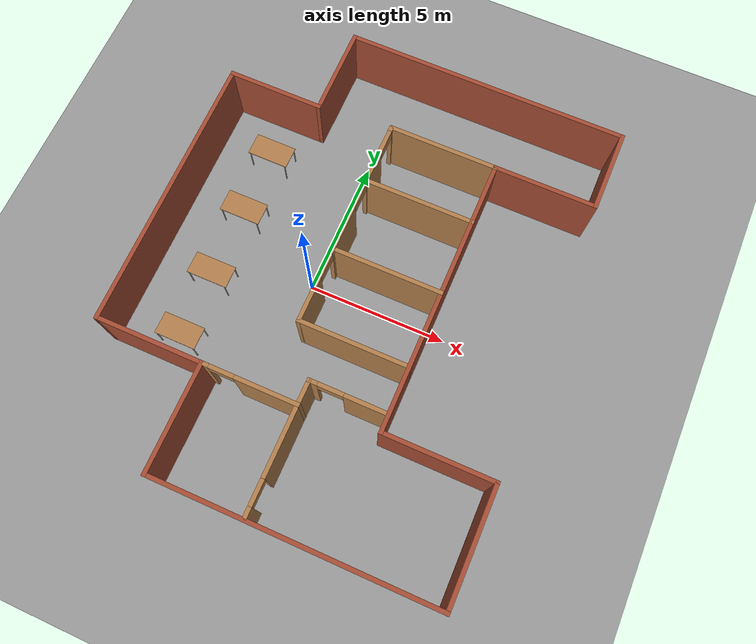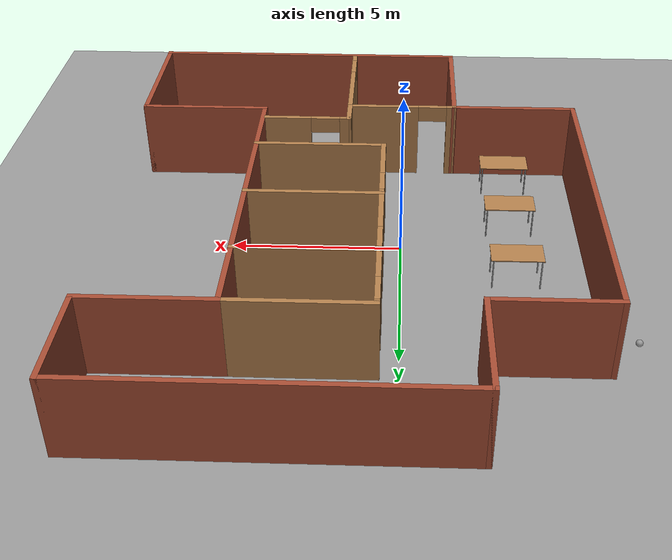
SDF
<sdf version="1.6">
 <world name="default">
  <plugin name="welcome_message" filename="libhello.so"/>
  <light name="sun" type="directional">
   <pose>0 0 10 0 -0 0</pose>
   <diffuse>0.8 0.8 0.8 1</diffuse>
   <specular>0.2 0.2 0.2 1</specular>
   <attenuation>
    <range>1000</range>
    <constant>0.9</constant>
    <linear>0.01</linear>
    <quadratic>0.001</quadratic>
   </attenuation>
   <direction>-0.5 0.1 -0.9</direction>
  </light>
  <model name="ground_plane">
   <static>1</static>
   <link name="link">
    <collision name="collision">
     <geometry><plane><normal>0 0 1</normal><size>100 100</size></plane></geometry>
     <surface>
      <contact><collide_bitmask>65535</collide_bitmask></contact>
      <friction><ode><mu>100</mu><mu2>50</mu2></ode></friction>
     </surface>
    </collision>
    <visual name="visual">
     <cast_shadows>0</cast_shadows>
     <geometry><plane><normal>0 0 1</normal><size>100 100</size></plane></geometry>
     <material>
      <script><uri>file://media/materials/scripts/gazebo.material</uri><name>Gazebo/Grey</name></script>
     </material>
    </visual>
   </link>
  </model>
  <gravity>0 0 -9.8</gravity>
  <magnetic_field>6e-06 2.3e-05 -4.2e-05</magnetic_field>
  <atmosphere type="adiabatic"/>
  <physics name="default_physics" default="0" type="ode">
   <max_step_size>0.001</max_step_size>
   <real_time_factor>1</real_time_factor>
   <real_time_update_rate>1000</real_time_update_rate>
  </physics>
  <scene><ambient>0.4 0.4 0.4 1</ambient><background>0.7 0.7 0.7 1</background><shadows>1</shadows></scene>
  <audio><device>default</device></audio>
  <spherical_coordinates>
   <surface_model>EARTH_WGS84</surface_model>
   <latitude_deg>0</latitude_deg>
   <longitude_deg>0</longitude_deg>
   <elevation>0</elevation>
   <heading_deg>0</heading_deg>
  </spherical_coordinates>
  <model name="model">
   <pose>1.41103 0.185901 0 0 -0 0</pose>
   <link name="Wall_15">
    <collision name="Wall_15_Collision">
     <geometry><box><size>10 0.15 2.5</size></box></geometry>
     <pose>0 0 1.25 0 -0 0</pose>
    </collision>
    <visual name="Wall_15_Visual">
     <pose>0 0 1.25 0 -0 0</pose>
     <geometry><box><size>10 0.15 2.5</size></box></geometry>
     <material>
      <script><uri>file://media/materials/scripts/gazebo.material</uri><name>Gazebo/Bricks</name></script>
      <ambient>1 1 1 1</ambient>
     </material>
     <meta><layer>0</layer></meta>
    </visual>
    <pose>-6.84447 0.347023 0 0 -0 -1.5708</pose>
   </link>
   <link name="Wall_16">
    <collision name="Wall_16_Collision">
     <geometry><box><size>3.93 0.15 2.5</size></box></geometry>
     <pose>0 0 1.25 0 -0 0</pose>
    </collision>
    <visual name="Wall_16_Visual">
     <pose>0 0 1.25 0 -0 0</pose>
     <geometry><box><size>3.93 0.15 2.5</size></box></geometry>
     <material>
      <script><uri>file://media/materials/scripts/gazebo.material</uri><name>Gazebo/Bricks</name></script>
      <ambient>1 1 1 1</ambient>
     </material>
     <meta><layer>0</layer></meta>
    </visual>
    <pose>-4.95447 -4.57648 0 0 -0 0.000794</pose>
   </link>
   <link name="Wall_17">
    <collision name="Wall_17_Collision">
     <geometry><box><size>3.94664 0.15 2.5</size></box></geometry>
     <pose>0 0 1.25 0 -0 0</pose>
    </collision>
    <visual name="Wall_17_Visual">
     <pose>0 0 1.25 0 -0 0</pose>
     <geometry><box><size>3.94664 0.15 2.5</size></box></geometry>
     <material>
      <script><uri>file://media/materials/scripts/gazebo.material</uri><name>Gazebo/Bricks</name></script>
      <ambient>1 1 1 1</ambient>
     </material>
     <meta><layer>0</layer></meta>
    </visual>
    <pose>-3.07047 -6.47348 0 0 -0 -1.57396</pose>
   </link>
   <link name="Wall_18">
    <collision name="Wall_18_Collision">
     <geometry><box><size>10.0703 0.15 2.5</size></box></geometry>
     <pose>0 0 1.25 0 -0 0</pose>
    </collision>
    <visual name="Wall_18_Visual">
     <pose>0 0 1.25 0 -0 0</pose>
     <geometry><box><size>10.0703 0.15 2.5</size></box></geometry>
     <material>
      <script><uri>file://media/materials/scripts/gazebo.material</uri><name>Gazebo/Bricks</name></script>
      <ambient>1 1 1 1</ambient>
     </material>
     <meta><layer>0</layer></meta>
    </visual>
    <pose>1.88403 -8.37198 0 0 -0 0</pose>
   </link>
   <link name="Wall_21">
    <collision name="Wall_21_Collision">
     <geometry><box><size>3.5 0.15 2.5</size></box></geometry>
     <pose>0 0 1.25 0 -0 0</pose>
    </collision>
    <visual name="Wall_21_Visual">
     <pose>0 0 1.25 0 -0 0</pose>
     <geometry><box><size>3.5 0.15 2.5</size></box></geometry>
     <material>
      <script><uri>file://media/materials/scripts/gazebo.material</uri><name>Gazebo/Bricks</name></script>
      <ambient>1 1 1 1</ambient>
     </material>
     <meta><layer>0</layer></meta>
    </visual>
    <pose>-5.16947 5.27202 0 0 -0 0</pose>
   </link>
   <link name="Wall_24">
    <collision name="Wall_24_Collision">
     <geometry><box><size>3.25 0.15 2.5</size></box></geometry>
     <pose>0 0 1.25 0 -0 0</pose>
    </collision>
    <visual name="Wall_24_Visual">
     <pose>0 0 1.25 0 -0 0</pose>
     <geometry><box><size>3.25 0.15 2.5</size></box></geometry>
     <material>
      <script><uri>file://media/materials/scripts/gazebo.material</uri><name>Gazebo/Bricks</name></script>
      <ambient>1 1 1 1</ambient>
     </material>
     <meta><layer>0</layer></meta>
    </visual>
    <pose>-3.49447 6.82202 0 0 -0 1.5708</pose>
   </link>
   <link name="Wall_26">
    <collision name="Wall_26_Collision">
     <geometry><box><size>10.25 0.15 2.5</size></box></geometry>
     <pose>0 0 1.25 0 -0 0</pose>
    </collision>
    <visual name="Wall_26_Visual">
     <pose>0 0 1.25 0 -0 0</pose>
     <geometry><box><size>10.25 0.15 2.5</size></box></geometry>
     <material>
      <script><uri>file://media/materials/scripts/gazebo.material</uri><name>Gazebo/Bricks</name></script>
      <ambient>1 1 1 1</ambient>
     </material>
     <meta><layer>0</layer></meta>
    </visual>
    <pose>1.55553 8.37202 0 0 -0 0</pose>
   </link>
   <link name="Wall_27">
    <collision name="Wall_27_Collision">
     <geometry><box><size>3 0.15 2.5</size></box></geometry>
     <pose>0 0 1.25 0 -0 0</pose>
    </collision>
    <visual name="Wall_27_Visual">
     <pose>0 0 1.25 0 -0 0</pose>
     <geometry><box><size>3 0.15 2.5</size></box></geometry>
     <material>
      <script><uri>file://media/materials/scripts/gazebo.material</uri><name>Gazebo/Bricks</name></script>
      <ambient>1 1 1 1</ambient>
     </material>
     <meta><layer>0</layer></meta>
    </visual>
    <pose>6.60553 6.94702 0 0 -0 -1.5708</pose>
   </link>
   <link name="Wall_28">
    <collision name="Wall_28_Collision">
     <geometry><box><size>3.75 0.15 2.5</size></box></geometry>
     <pose>0 0 1.25 0 -0 0</pose>
    </collision>
    <visual name="Wall_28_Visual">
     <pose>0 0 1.25 0 -0 0</pose>
     <geometry><box><size>3.75 0.15 2.5</size></box></geometry>
     <material>
      <script><uri>file://media/materials/scripts/gazebo.material</uri><name>Gazebo/Bricks</name></script>
      <ambient>1 1 1 1</ambient>
     </material>
     <meta><layer>0</layer></meta>
    </visual>
    <pose>4.80553 5.52202 0 0 -0 3.14159</pose>
   </link>
   <link name="Wall_29">
    <collision name="Wall_29_Collision">
     <geometry><box><size>10 0.15 2.5</size></box></geometry>
     <pose>0 0 1.25 0 -0 0</pose>
    </collision>
    <visual name="Wall_29_Visual">
     <pose>0 0 1.25 0 -0 0</pose>
     <geometry><box><size>10 0.15 2.5</size></box></geometry>
     <material>
      <script><uri>file://media/materials/scripts/gazebo.material</uri><name>Gazebo/Bricks</name></script>
      <ambient>1 1 1 1</ambient>
     </material>
     <meta><layer>0</layer></meta>
    </visual>
    <pose>3.00553 0.597023 0 0 -0 -1.5708</pose>
   </link>
   <link name="Wall_30">
    <collision name="Wall_30_Collision">
     <geometry><box><size>3.989 0.15 2.5</size></box></geometry>
     <pose>0 0 1.25 0 -0 0</pose>
    </collision>
    <visual name="Wall_30_Visual">
     <pose>0 0 1.25 0 -0 0</pose>
     <geometry><box><size>3.989 0.15 2.5</size></box></geometry>
     <material>
      <script><uri>file://media/materials/scripts/gazebo.material</uri><name>Gazebo/Bricks</name></script>
      <ambient>1 1 1 1</ambient>
     </material>
     <meta><layer>0</layer></meta>
    </visual>
    <pose>4.92503 -4.32798 0 0 -0 0</pose>
   </link>
   <link name="Wall_31">
    <collision name="Wall_31_Collision">
     <geometry><box><size>4.194 0.15 2.5</size></box></geometry>
     <pose>0 0 1.25 0 -0 0</pose>
    </collision>
    <visual name="Wall_31_Visual">
     <pose>0 0 1.25 0 -0 0</pose>
     <geometry><box><size>4.194 0.15 2.5</size></box></geometry>
     <material>
      <script><uri>file://media/materials/scripts/gazebo.material</uri><name>Gazebo/Bricks</name></script>
      <ambient>1 1 1 1</ambient>
     </material>
     <meta><layer>0</layer></meta>
    </visual>
    <pose>6.84453 -6.34998 0 0 -0 -1.5708</pose>
   </link>
   <link name="Wall_33">
    <pose>-1.39097 -4.57498 0 0 -0 0</pose>
    <visual name="Wall_33_Visual_0">
     <pose>-1.58955 0 1.25 0 -0 0</pose>
     <geometry><box><size>0.318751 0.15 2.5</size></box></geometry>
     <material>
      <script><uri>file://media/materials/scripts/gazebo.material</uri><name>Gazebo/Wood</name></script>
      <ambient>1 1 1 1</ambient>
     </material>
     <meta><layer>0</layer></meta>
    </visual>
    <collision name="Wall_33_Collision_0">
     <geometry><box><size>0.318751 0.15 2.5</size></box></geometry>
     <pose>-1.58955 0 1.25 0 -0 0</pose>
    </collision>
    <visual name="Wall_33_Visual_1">
     <pose>0.609376 0 1.25 0 -0 0</pose>
     <geometry><box><size>2.27911 0.15 2.5</size></box></geometry>
     <material>
      <script><uri>file://media/materials/scripts/gazebo.material</uri><name>Gazebo/Wood</name></script>
      <ambient>1 1 1 1</ambient>
     </material>
     <meta><layer>0</layer></meta>
    </visual>
    <collision name="Wall_33_Collision_1">
     <geometry><box><size>2.27911 0.15 2.5</size></box></geometry>
     <pose>0.609376 0 1.25 0 -0 0</pose>
    </collision>
    <visual name="Wall_33_Visual_2">
     <pose>-0.980177 0 2.25 0 -0 0</pose>
     <geometry><box><size>0.9 0.15 0.5</size></box></geometry>
     <material>
      <script><uri>file://media/materials/scripts/gazebo.material</uri><name>Gazebo/Wood</name></script>
      <ambient>1 1 1 1</ambient>
     </material>
     <meta><layer>0</layer></meta>
    </visual>
    <collision name="Wall_33_Collision_2">
     <geometry><box><size>0.9 0.15 0.5</size></box></geometry>
     <pose>-0.980177 0 2.25 0 -0 0</pose>
    </collision>
   </link>
   <link name="Wall_34">
    <collision name="Wall_34_Collision">
     <geometry><box><size>0.999624 0.15 2.5</size></box></geometry>
     <pose>0 0 1.25 0 -0 0</pose>
    </collision>
    <visual name="Wall_34_Visual">
     <pose>0 0 1.25 0 -0 0</pose>
     <geometry><box><size>0.999624 0.15 2.5</size></box></geometry>
     <material>
      <script><uri>file://media/materials/scripts/gazebo.material</uri><name>Gazebo/Wood</name></script>
      <ambient>1 1 1 1</ambient>
     </material>
     <meta><layer>0</layer></meta>
    </visual>
    <pose>0.283851 -4.15017 0 0 -0 1.56769</pose>
   </link>
   <link name="Wall_35">
    <pose>1.58517 -3.72536 0 0 -0 0</pose>
    <visual name="Wall_35_Visual_0">
     <pose>-1.19036 0 1.25 0 -0 0</pose>
     <geometry><box><size>0.369285 0.15 2.5</size></box></geometry>
     <material>
      <script><uri>file://media/materials/scripts/gazebo.material</uri><name>Gazebo/Wood</name></script>
      <ambient>1 1 1 1</ambient>
     </material>
     <meta><layer>0</layer></meta>
    </visual>
    <collision name="Wall_35_Collision_0">
     <geometry><box><size>0.369285 0.15 2.5</size></box></geometry>
     <pose>-1.19036 0 1.25 0 -0 0</pose>
    </collision>
    <visual name="Wall_35_Visual_1">
     <pose>0.634642 0 1.25 0 -0 0</pose>
     <geometry><box><size>1.48072 0.15 2.5</size></box></geometry>
     <material>
      <script><uri>file://media/materials/scripts/gazebo.material</uri><name>Gazebo/Wood</name></script>
      <ambient>1 1 1 1</ambient>
     </material>
     <meta><layer>0</layer></meta>
    </visual>
    <collision name="Wall_35_Collision_1">
     <geometry><box><size>1.48072 0.15 2.5</size></box></geometry>
     <pose>0.634642 0 1.25 0 -0 0</pose>
    </collision>
    <visual name="Wall_35_Visual_2">
     <pose>-0.555715 0 2.25 0 -0 0</pose>
     <geometry><box><size>0.9 0.15 0.5</size></box></geometry>
     <material>
      <script><uri>file://media/materials/scripts/gazebo.material</uri><name>Gazebo/Wood</name></script>
      <ambient>1 1 1 1</ambient>
     </material>
     <meta><layer>0</layer></meta>
    </visual>
    <collision name="Wall_35_Collision_2">
     <geometry><box><size>0.9 0.15 0.5</size></box></geometry>
     <pose>-0.555715 0 2.25 0 -0 0</pose>
    </collision>
   </link>
   <link name="Wall_37">
    <pose>0.28253 -6.46998 0 0 -0 -1.5708</pose>
    <visual name="Wall_37_Visual_0">
     <pose>-0.694397 0 1.25 0 -0 0</pose>
     <geometry><box><size>2.55091 0.15 2.5</size></box></geometry>
     <material>
      <script><uri>file://media/materials/scripts/gazebo.material</uri><name>Gazebo/Wood</name></script>
      <ambient>1 1 1 1</ambient>
     </material>
     <meta><layer>0</layer></meta>
    </visual>
    <collision name="Wall_37_Collision_0">
     <geometry><box><size>2.55091 0.15 2.5</size></box></geometry>
     <pose>-0.694397 0 1.25 0 -0 0</pose>
    </collision>
    <visual name="Wall_37_Visual_1">
     <pose>1.72546 0 1.25 0 -0 0</pose>
     <geometry><box><size>0.488793 0.15 2.5</size></box></geometry>
     <material>
      <script><uri>file://media/materials/scripts/gazebo.material</uri><name>Gazebo/Wood</name></script>
      <ambient>1 1 1 1</ambient>
     </material>
     <meta><layer>0</layer></meta>
    </visual>
    <collision name="Wall_37_Collision_1">
     <geometry><box><size>0.488793 0.15 2.5</size></box></geometry>
     <pose>1.72546 0 1.25 0 -0 0</pose>
    </collision>
    <visual name="Wall_37_Visual_2">
     <pose>1.03106 0 2.25 0 -0 0</pose>
     <geometry><box><size>0.9 0.15 0.5</size></box></geometry>
     <material>
      <script><uri>file://media/materials/scripts/gazebo.material</uri><name>Gazebo/Wood</name></script>
      <ambient>1 1 1 1</ambient>
     </material>
     <meta><layer>0</layer></meta>
    </visual>
    <collision name="Wall_37_Collision_2">
     <geometry><box><size>0.9 0.15 0.5</size></box></geometry>
     <pose>1.03106 0 2.25 0 -0 0</pose>
    </collision>
   </link>
   <link name="Wall_39">
    <collision name="Wall_39_Collision">
     <geometry><box><size>4 0.15 2.5</size></box></geometry>
     <pose>0 0 1.25 0 -0 0</pose>
    </collision>
    <visual name="Wall_39_Visual">
     <pose>0 0 1.25 0 -0 0</pose>
     <geometry><box><size>4 0.15 2.5</size></box></geometry>
     <material>
      <script><uri>file://media/materials/scripts/gazebo.material</uri><name>Gazebo/Wood</name></script>
      <ambient>1 1 1 1</ambient>
     </material>
     <meta><layer>0</layer></meta>
    </visual>
    <pose>1.08053 5.52202 0 0 -0 3.14159</pose>
   </link>
   <link name="Wall_40">
    <pose>-0.84447 1.72202 0 0 -0 -1.5708</pose>
    <visual name="Wall_40_Visual_0">
     <pose>-3.7641 0 1.25 0 -0 0</pose>
     <geometry><box><size>0.221797 0.15 2.5</size></box></geometry>
     <material>
      <script><uri>file://media/materials/scripts/gazebo.material</uri><name>Gazebo/Wood</name></script>
      <ambient>1 1 1 1</ambient>
     </material>
     <meta><layer>0</layer></meta>
    </visual>
    <collision name="Wall_40_Collision_0">
     <geometry><box><size>0.221797 0.15 2.5</size></box></geometry>
     <pose>-3.7641 0 1.25 0 -0 0</pose>
    </collision>
    <visual name="Wall_40_Visual_1">
     <pose>-2.10701 0 1.25 0 -0 0</pose>
     <geometry><box><size>1.29238 0.15 2.5</size></box></geometry>
     <material>
      <script><uri>file://media/materials/scripts/gazebo.material</uri><name>Gazebo/Wood</name></script>
      <ambient>1 1 1 1</ambient>
     </material>
     <meta><layer>0</layer></meta>
    </visual>
    <collision name="Wall_40_Collision_1">
     <geometry><box><size>1.29238 0.15 2.5</size></box></geometry>
     <pose>-2.10701 0 1.25 0 -0 0</pose>
    </collision>
    <visual name="Wall_40_Visual_2">
     <pose>0.367659 0 1.25 0 -0 0</pose>
     <geometry><box><size>1.85697 0.15 2.5</size></box></geometry>
     <material>
      <script><uri>file://media/materials/scripts/gazebo.material</uri><name>Gazebo/Wood</name></script>
      <ambient>1 1 1 1</ambient>
     </material>
     <meta><layer>0</layer></meta>
    </visual>
    <collision name="Wall_40_Collision_2">
     <geometry><box><size>1.85697 0.15 2.5</size></box></geometry>
     <pose>0.367659 0 1.25 0 -0 0</pose>
    </collision>
    <visual name="Wall_40_Visual_3">
     <pose>3.03557 0 1.25 0 -0 0</pose>
     <geometry><box><size>1.67886 0.15 2.5</size></box></geometry>
     <material>
      <script><uri>file://media/materials/scripts/gazebo.material</uri><name>Gazebo/Wood</name></script>
      <ambient>1 1 1 1</ambient>
     </material>
     <meta><layer>0</layer></meta>
    </visual>
    <collision name="Wall_40_Collision_3">
     <geometry><box><size>1.67886 0.15 2.5</size></box></geometry>
     <pose>3.03557 0 1.25 0 -0 0</pose>
    </collision>
    <visual name="Wall_40_Visual_4">
     <pose>-3.2032 0 2.25 0 -0 0</pose>
     <geometry><box><size>0.9 0.15 0.5</size></box></geometry>
     <material>
      <script><uri>file://media/materials/scripts/gazebo.material</uri><name>Gazebo/Wood</name></script>
      <ambient>1 1 1 1</ambient>
     </material>
     <meta><layer>0</layer></meta>
    </visual>
    <collision name="Wall_40_Collision_4">
     <geometry><box><size>0.9 0.15 0.5</size></box></geometry>
     <pose>-3.2032 0 2.25 0 -0 0</pose>
    </collision>
    <visual name="Wall_40_Visual_5">
     <pose>-1.01082 0 2.25 0 -0 0</pose>
     <geometry><box><size>0.9 0.15 0.5</size></box></geometry>
     <material>
      <script><uri>file://media/materials/scripts/gazebo.material</uri><name>Gazebo/Wood</name></script>
      <ambient>1 1 1 1</ambient>
     </material>
     <meta><layer>0</layer></meta>
    </visual>
    <collision name="Wall_40_Collision_5">
     <geometry><box><size>0.9 0.15 0.5</size></box></geometry>
     <pose>-1.01082 0 2.25 0 -0 0</pose>
    </collision>
    <visual name="Wall_40_Visual_6">
     <pose>1.74614 0 2.25 0 -0 0</pose>
     <geometry><box><size>0.9 0.15 0.5</size></box></geometry>
     <material>
      <script><uri>file://media/materials/scripts/gazebo.material</uri><name>Gazebo/Wood</name></script>
      <ambient>1 1 1 1</ambient>
     </material>
     <meta><layer>0</layer></meta>
    </visual>
    <collision name="Wall_40_Collision_6">
     <geometry><box><size>0.9 0.15 0.5</size></box></geometry>
     <pose>1.74614 0 2.25 0 -0 0</pose>
    </collision>
   </link>
   <link name="Wall_41">
    <collision name="Wall_41_Collision">
     <geometry><box><size>4 0.15 2.5</size></box></geometry>
     <pose>0 0 1.25 0 -0 0</pose>
    </collision>
    <visual name="Wall_41_Visual">
     <pose>0 0 1.25 0 -0 0</pose>
     <geometry><box><size>4 0.15 2.5</size></box></geometry>
     <material>
      <script><uri>file://media/materials/scripts/gazebo.material</uri><name>Gazebo/Wood</name></script>
      <ambient>1 1 1 1</ambient>
     </material>
     <meta><layer>0</layer></meta>
    </visual>
    <pose>1.08053 -2.07798 0 0 -0 0</pose>
   </link>
   <link name="Wall_43">
    <collision name="Wall_43_Collision">
     <geometry><box><size>4 0.15 2.5</size></box></geometry>
     <pose>0 0 1.25 0 -0 0</pose>
    </collision>
    <visual name="Wall_43_Visual">
     <pose>0 0 1.25 0 -0 0</pose>
     <geometry><box><size>4 0.15 2.5</size></box></geometry>
     <material>
      <script><uri>file://media/materials/scripts/gazebo.material</uri><name>Gazebo/Wood</name></script>
      <ambient>1 1 1 1</ambient>
     </material>
     <meta><layer>0</layer></meta>
    </visual>
    <pose>1.07714 3.33281 0 0 -0 0</pose>
   </link>
   <link name="Wall_45">
    <collision name="Wall_45_Collision">
     <geometry><box><size>4 0.15 2.5</size></box></geometry>
     <pose>0 0 1.25 0 -0 0</pose>
    </collision>
    <visual name="Wall_45_Visual">
     <pose>0 0 1.25 0 -0 0</pose>
     <geometry><box><size>4 0.15 2.5</size></box></geometry>
     <material>
      <script><uri>file://media/materials/scripts/gazebo.material</uri><name>Gazebo/Wood</name></script>
      <ambient>1 1 1 1</ambient>
     </material>
     <meta><layer>0</layer></meta>
    </visual>
    <pose>1.0738 0.614776 0 0 -0 0</pose>
   </link>
   <static>1</static>
  </model>
  <model name="table">
   <static>1</static>
   <link name="link">
    <collision name="surface">
     <pose>0 0 1 0 -0 0</pose>
     <geometry><box><size>1.5 0.8 0.03</size></box></geometry>
     <surface><friction><ode><mu>0.6</mu><mu2>0.6</mu2></ode></friction></surface>
    </collision>
    <visual name="visual1">
     <pose>0 0 1 0 -0 0</pose>
     <geometry><box><size>1.5 0.8 0.03</size></box></geometry>
     <material>
      <script><uri>file://media/materials/scripts/gazebo.material</uri><name>Gazebo/Wood</name></script>
     </material>
    </visual>
    <collision name="front_left_leg">
     <pose>0.68 0.38 0.5 0 -0 0</pose>
     <geometry><cylinder><radius>0.02</radius><length>1</length></cylinder></geometry>
    </collision>
    <visual name="front_left_leg">
     <pose>0.68 0.38 0.5 0 -0 0</pose>
     <geometry><cylinder><radius>0.02</radius><length>1</length></cylinder></geometry>
     <material>
      <script><uri>file://media/materials/scripts/gazebo.material</uri><name>Gazebo/Grey</name></script>
     </material>
    </visual>
    <collision name="front_right_leg">
     <pose>0.68 -0.38 0.5 0 -0 0</pose>
     <geometry><cylinder><radius>0.02</radius><length>1</length></cylinder></geometry>
    </collision>
    <visual name="front_right_leg">
     <pose>0.68 -0.38 0.5 0 -0 0</pose>
     <geometry><cylinder><radius>0.02</radius><length>1</length></cylinder></geometry>
     <material>
      <script><uri>file://media/materials/scripts/gazebo.material</uri><name>Gazebo/Grey</name></script>
     </material>
    </visual>
    <collision name="back_right_leg">
     <pose>-0.68 -0.38 0.5 0 -0 0</pose>
     <geometry><cylinder><radius>0.02</radius><length>1</length></cylinder></geometry>
    </collision>
    <visual name="back_right_leg">
     <pose>-0.68 -0.38 0.5 0 -0 0</pose>
     <geometry><cylinder><radius>0.02</radius><length>1</length></cylinder></geometry>
     <material>
      <script><uri>file://media/materials/scripts/gazebo.material</uri><name>Gazebo/Grey</name></script>
     </material>
    </visual>
    <collision name="back_left_leg">
     <pose>-0.68 0.38 0.5 0 -0 0</pose>
     <geometry><cylinder><radius>0.02</radius><length>1</length></cylinder></geometry>
    </collision>
    <visual name="back_left_leg">
     <pose>-0.68 0.38 0.5 0 -0 0</pose>
     <geometry><cylinder><radius>0.02</radius><length>1</length></cylinder></geometry>
     <material>
      <script><uri>file://media/materials/scripts/gazebo.material</uri><name>Gazebo/Grey</name></script>
     </material>
    </visual>
   </link>
   <pose>-3.3307 3.90003 0 0 -0 0</pose>
  </model>
  <model name="table_0">
   <static>1</static>
   <link name="link">
    <collision name="surface">
     <pose>0 0 1 0 -0 0</pose>
     <geometry><box><size>1.5 0.8 0.03</size></box></geometry>
     <surface><friction><ode><mu>0.6</mu><mu2>0.6</mu2></ode></friction></surface>
    </collision>
    <visual name="visual1">
     <pose>0 0 1 0 -0 0</pose>
     <geometry><box><size>1.5 0.8 0.03</size></box></geometry>
     <material>
      <script><uri>file://media/materials/scripts/gazebo.material</uri><name>Gazebo/Wood</name></script>
     </material>
    </visual>
    <collision name="front_left_leg">
     <pose>0.68 0.38 0.5 0 -0 0</pose>
     <geometry><cylinder><radius>0.02</radius><length>1</length></cylinder></geometry>
    </collision>
    <visual name="front_left_leg">
     <pose>0.68 0.38 0.5 0 -0 0</pose>
     <geometry><cylinder><radius>0.02</radius><length>1</length></cylinder></geometry>
     <material>
      <script><uri>file://media/materials/scripts/gazebo.material</uri><name>Gazebo/Grey</name></script>
     </material>
    </visual>
    <collision name="front_right_leg">
     <pose>0.68 -0.38 0.5 0 -0 0</pose>
     <geometry><cylinder><radius>0.02</radius><length>1</length></cylinder></geometry>
    </collision>
    <visual name="front_right_leg">
     <pose>0.68 -0.38 0.5 0 -0 0</pose>
     <geometry><cylinder><radius>0.02</radius><length>1</length></cylinder></geometry>
     <material>
      <script><uri>file://media/materials/scripts/gazebo.material</uri><name>Gazebo/Grey</name></script>
     </material>
    </visual>
    <collision name="back_right_leg">
     <pose>-0.68 -0.38 0.5 0 -0 0</pose>
     <geometry><cylinder><radius>0.02</radius><length>1</length></cylinder></geometry>
    </collision>
    <visual name="back_right_leg">
     <pose>-0.68 -0.38 0.5 0 -0 0</pose>
     <geometry><cylinder><radius>0.02</radius><length>1</length></cylinder></geometry>
     <material>
      <script><uri>file://media/materials/scripts/gazebo.material</uri><name>Gazebo/Grey</name></script>
     </material>
    </visual>
    <collision name="back_left_leg">
     <pose>-0.68 0.38 0.5 0 -0 0</pose>
     <geometry><cylinder><radius>0.02</radius><length>1</length></cylinder></geometry>
    </collision>
    <visual name="back_left_leg">
     <pose>-0.68 0.38 0.5 0 -0 0</pose>
     <geometry><cylinder><radius>0.02</radius><length>1</length></cylinder></geometry>
     <material>
      <script><uri>file://media/materials/scripts/gazebo.material</uri><name>Gazebo/Grey</name></script>
     </material>
    </visual>
   </link>
   <pose>-3.27845 1.48889 0 0 -0 0</pose>
  </model>
  <model name="table_1">
   <static>1</static>
   <link name="link">
    <collision name="surface">
     <pose>0 0 1 0 -0 0</pose>
     <geometry><box><size>1.5 0.8 0.03</size></box></geometry>
     <surface><friction><ode><mu>0.6</mu><mu2>0.6</mu2></ode></friction></surface>
    </collision>
    <visual name="visual1">
     <pose>0 0 1 0 -0 0</pose>
     <geometry><box><size>1.5 0.8 0.03</size></box></geometry>
     <material>
      <script><uri>file://media/materials/scripts/gazebo.material</uri><name>Gazebo/Wood</name></script>
     </material>
    </visual>
    <collision name="front_left_leg">
     <pose>0.68 0.38 0.5 0 -0 0</pose>
     <geometry><cylinder><radius>0.02</radius><length>1</length></cylinder></geometry>
    </collision>
    <visual name="front_left_leg">
     <pose>0.68 0.38 0.5 0 -0 0</pose>
     <geometry><cylinder><radius>0.02</radius><length>1</length></cylinder></geometry>
     <material>
      <script><uri>file://media/materials/scripts/gazebo.material</uri><name>Gazebo/Grey</name></script>
     </material>
    </visual>
    <collision name="front_right_leg">
     <pose>0.68 -0.38 0.5 0 -0 0</pose>
     <geometry><cylinder><radius>0.02</radius><length>1</length></cylinder></geometry>
    </collision>
    <visual name="front_right_leg">
     <pose>0.68 -0.38 0.5 0 -0 0</pose>
     <geometry><cylinder><radius>0.02</radius><length>1</length></cylinder></geometry>
     <material>
      <script><uri>file://media/materials/scripts/gazebo.material</uri><name>Gazebo/Grey</name></script>
     </material>
    </visual>
    <collision name="back_right_leg">
     <pose>-0.68 -0.38 0.5 0 -0 0</pose>
     <geometry><cylinder><radius>0.02</radius><length>1</length></cylinder></geometry>
    </collision>
    <visual name="back_right_leg">
     <pose>-0.68 -0.38 0.5 0 -0 0</pose>
     <geometry><cylinder><radius>0.02</radius><length>1</length></cylinder></geometry>
     <material>
      <script><uri>file://media/materials/scripts/gazebo.material</uri><name>Gazebo/Grey</name></script>
     </material>
    </visual>
    <collision name="back_left_leg">
     <pose>-0.68 0.38 0.5 0 -0 0</pose>
     <geometry><cylinder><radius>0.02</radius><length>1</length></cylinder></geometry>
    </collision>
    <visual name="back_left_leg">
     <pose>-0.68 0.38 0.5 0 -0 0</pose>
     <geometry><cylinder><radius>0.02</radius><length>1</length></cylinder></geometry>
     <material>
      <script><uri>file://media/materials/scripts/gazebo.material</uri><name>Gazebo/Grey</name></script>
     </material>
    </visual>
   </link>
   <pose>-3.26743 -1.08139 0 0 -0 0</pose>
  </model>
  <model name="table_2">
   <static>1</static>
   <link name="link">
    <collision name="surface">
     <pose>0 0 1 0 -0 0</pose>
     <geometry><box><size>1.5 0.8 0.03</size></box></geometry>
     <surface><friction><ode><mu>0.6</mu><mu2>0.6</mu2></ode></friction></surface>
    </collision>
    <visual name="visual1">
     <pose>0 0 1 0 -0 0</pose>
     <geometry><box><size>1.5 0.8 0.03</size></box></geometry>
     <material>
      <script><uri>file://media/materials/scripts/gazebo.material</uri><name>Gazebo/Wood</name></script>
     </material>
    </visual>
    <collision name="front_left_leg">
     <pose>0.68 0.38 0.5 0 -0 0</pose>
     <geometry><cylinder><radius>0.02</radius><length>1</length></cylinder></geometry>
    </collision>
    <visual name="front_left_leg">
     <pose>0.68 0.38 0.5 0 -0 0</pose>
     <geometry><cylinder><radius>0.02</radius><length>1</length></cylinder></geometry>
     <material>
      <script><uri>file://media/materials/scripts/gazebo.material</uri><name>Gazebo/Grey</name></script>
     </material>
    </visual>
    <collision name="front_right_leg">
     <pose>0.68 -0.38 0.5 0 -0 0</pose>
     <geometry><cylinder><radius>0.02</radius><length>1</length></cylinder></geometry>
    </collision>
    <visual name="front_right_leg">
     <pose>0.68 -0.38 0.5 0 -0 0</pose>
     <geometry><cylinder><radius>0.02</radius><length>1</length></cylinder></geometry>
     <material>
      <script><uri>file://media/materials/scripts/gazebo.material</uri><name>Gazebo/Grey</name></script>
     </material>
    </visual>
    <collision name="back_right_leg">
     <pose>-0.68 -0.38 0.5 0 -0 0</pose>
     <geometry><cylinder><radius>0.02</radius><length>1</length></cylinder></geometry>
    </collision>
    <visual name="back_right_leg">
     <pose>-0.68 -0.38 0.5 0 -0 0</pose>
     <geometry><cylinder><radius>0.02</radius><length>1</length></cylinder></geometry>
     <material>
      <script><uri>file://media/materials/scripts/gazebo.material</uri><name>Gazebo/Grey</name></script>
     </material>
    </visual>
    <collision name="back_left_leg">
     <pose>-0.68 0.38 0.5 0 -0 0</pose>
     <geometry><cylinder><radius>0.02</radius><length>1</length></cylinder></geometry>
    </collision>
    <visual name="back_left_leg">
     <pose>-0.68 0.38 0.5 0 -0 0</pose>
     <geometry><cylinder><radius>0.02</radius><length>1</length></cylinder></geometry>
     <material>
      <script><uri>file://media/materials/scripts/gazebo.material</uri><name>Gazebo/Grey</name></script>
     </material>
    </visual>
   </link>
   <pose>-3.26102 -3.46346 0 0 -0 0</pose>
  </model>
  <model name="ground_plane_0">
   <static>1</static>
   <link name="link">
    <collision name="collision">
     <geometry><plane><normal>0 0 1</normal><size>100 100</size></plane></geometry>
     <surface>
      <contact><collide_bitmask>65535</collide_bitmask></contact>
      <friction><ode><mu>100</mu><mu2>50</mu2></ode></friction>
     </surface>
    </collision>
    <visual name="visual">
     <cast_shadows>0</cast_shadows>
     <geometry><plane><normal>0 0 1</normal><size>100 100</size></plane></geometry>
     <material>
      <script><uri>file://media/materials/scripts/gazebo.material</uri><name>Gazebo/Grey</name></script>
     </material>
    </visual>
   </link>
   <pose>1.3082 6.59215 0 0 -0 0</pose>
  </model>
  <model name="my_ball">
   <link name="link_0">
    <inertial>
     <mass>1</mass>
     <inertia><ixx>0.1</ixx><ixy>0</ixy><ixz>0</ixz><iyy>0.1</iyy><iyz>0</iyz><izz>0.1</izz></inertia>
    </inertial>
    <visual name="visual">
     <geometry><sphere><radius>0.1</radius></sphere></geometry>
     <material>
      <lighting>1</lighting>
      <script><uri>file://media/materials/scripts/gazebo.material</uri><name>Gazebo/Grey</name></script>
      <shader type="vertex"><normal_map>__default__</normal_map></shader>
      <ambient>1 1 1 1</ambient>
      <diffuse>1 1 1 1</diffuse>
      <specular>1 1 1 1</specular>
      <emissive>1 1 1 1</emissive>
     </material>
    </visual>
    <collision name="collision">
     <geometry><sphere><radius>0.1</radius></sphere></geometry>
     <surface>
      <friction>
       <ode><mu>1</mu><mu2>1</mu2><fdir1>0 0 0</fdir1><slip1>0</slip1><slip2>0</slip2></ode>
       <torsional>
        <coefficient>1</coefficient>
        <patch_radius>0</patch_radius>
        <surface_radius>0</surface_radius>
        <use_patch_radius>1</use_patch_radius>
        <ode><slip>0</slip></ode>
       </torsional>
      </friction>
      <bounce><restitution_coefficient>0</restitution_coefficient><threshold>1e+06</threshold></bounce>
      <contact>
       <collide_without_contact>0</collide_without_contact>
       <collide_without_contact_bitmask>1</collide_without_contact_bitmask>
       <collide_bitmask>1</collide_bitmask>
       <ode>
        <soft_cfm>0</soft_cfm>
        <soft_erp>0.2</soft_erp>
        <kp>1e+13</kp>
        <kd>1</kd>
        <max_vel>0.01</max_vel>
        <min_depth>0</min_depth>
       </ode>
       <bullet>
        <split_impulse>1</split_impulse>
        <split_impulse_penetration_threshold>-0.01</split_impulse_penetration_threshold>
        <soft_cfm>0</soft_cfm>
        <soft_erp>0.2</soft_erp>
        <kp>1e+13</kp>
        <kd>1</kd>
       </bullet>
      </contact>
     </surface>
    </collision>
   </link>
   <static>0</static>
   <pose>-6.32759 4.17665 0.099991 0 -0 0</pose>
  </model>
 </world>
</sdf>
